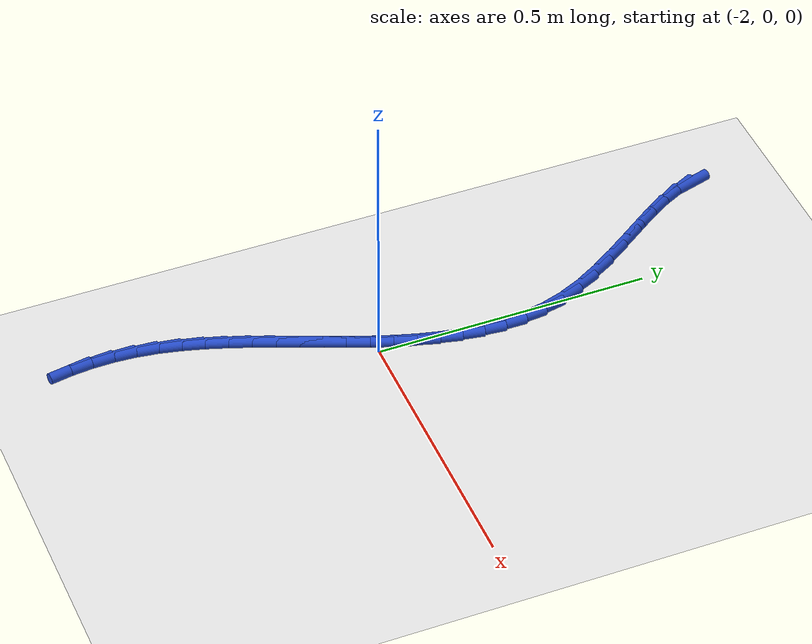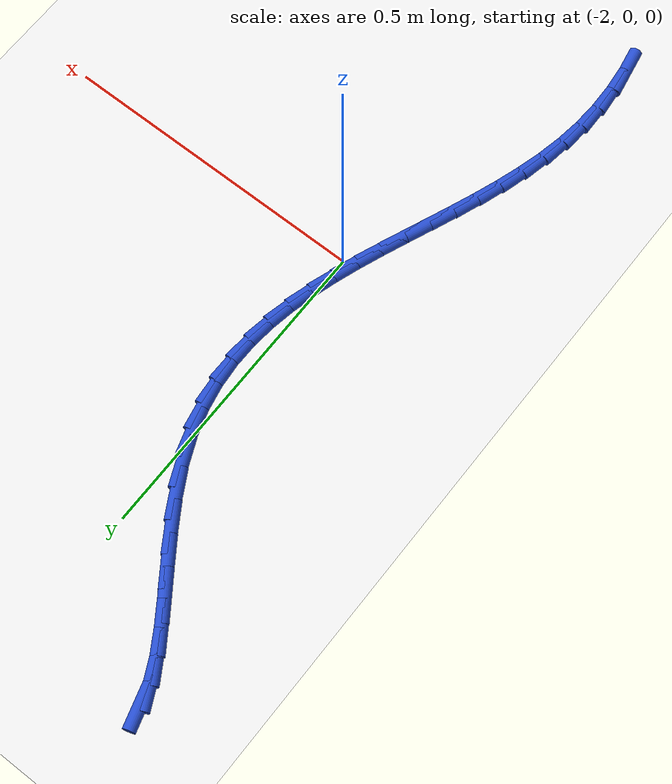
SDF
<sdf version="1.6">
 <world name="default">
  <model name="ground_plane">
   <static>1</static>
   <link name="link">
    <collision name="collision">
     <geometry><plane><normal>0 0 1</normal><size>100 100</size></plane></geometry>
     <surface><friction><ode><mu>100</mu><mu2>50</mu2></ode></friction></surface>
    </collision>
    <visual name="visual">
     <cast_shadows>0</cast_shadows>
     <geometry><plane><normal>0 0 1</normal><size>100 100</size></plane></geometry>
     <material>
      <script><uri>file://media/materials/scripts/gazebo.material</uri><name>Gazebo/WhiteGlow</name></script>
     </material>
    </visual>
   </link>
  </model>
  <model name="line">
   <link name="link_81">
    <pose>-2.189905080117014 0.6813268508372244 0.01 0 1.57 -1.2906413061240363</pose>
    <collision name="collision">
     <geometry><cylinder><radius>0.01</radius><length>0.08</length></cylinder></geometry>
    </collision>
    <visual name="visual">
     <material>
      <script><name>Gazebo/Blue</name><uri>file://media/materials/scripts/gazebo.material</uri></script>
     </material>
     <geometry><cylinder><radius>0.01</radius><length>0.08</length></cylinder></geometry>
    </visual>
   </link>
   <link name="link_82">
    <pose>-2.181699165474315 0.6528065787257264 0.01 0 1.57 -1.1169519439368545</pose>
    <collision name="collision">
     <geometry><cylinder><radius>0.01</radius><length>0.08</length></cylinder></geometry>
    </collision>
    <visual name="visual">
     <material>
      <script><name>Gazebo/Blue</name><uri>file://media/materials/scripts/gazebo.material</uri></script>
     </material>
     <geometry><cylinder><radius>0.01</radius><length>0.08</length></cylinder></geometry>
    </visual>
   </link>
   <link name="link_83">
    <pose>-2.1660738935886026 0.6207748023590199 0.01 0 1.57 -1.0246132254083469</pose>
    <collision name="collision">
     <geometry><cylinder><radius>0.01</radius><length>0.08</length></cylinder></geometry>
    </collision>
    <visual name="visual">
     <material>
      <script><name>Gazebo/Blue</name><uri>file://media/materials/scripts/gazebo.material</uri></script>
     </material>
     <geometry><cylinder><radius>0.01</radius><length>0.08</length></cylinder></geometry>
    </visual>
   </link>
   <link name="link_84">
    <pose>-2.144806069992094 0.5857871059061365 0.01 0 1.57 -0.9789481482282569</pose>
    <collision name="collision">
     <geometry><cylinder><radius>0.01</radius><length>0.08</length></cylinder></geometry>
    </collision>
    <visual name="visual">
     <material>
      <script><name>Gazebo/Blue</name><uri>file://media/materials/scripts/gazebo.material</uri></script>
     </material>
     <geometry><cylinder><radius>0.01</radius><length>0.08</length></cylinder></geometry>
    </visual>
   </link>
   <link name="link_85">
    <pose>-2.1196725002170105 0.548399073536109 0.01 0 1.57 -0.9641953086082474</pose>
    <collision name="collision">
     <geometry><cylinder><radius>0.01</radius><length>0.08</length></cylinder></geometry>
    </collision>
    <visual name="visual">
     <material>
      <script><name>Gazebo/Blue</name><uri>file://media/materials/scripts/gazebo.material</uri></script>
     </material>
     <geometry><cylinder><radius>0.01</radius><length>0.08</length></cylinder></geometry>
    </visual>
   </link>
   <link name="link_86">
    <pose>-2.0924499897955706 0.5091662894179695 0.01 0 1.57 -0.9739620004251649</pose>
    <collision name="collision">
     <geometry><cylinder><radius>0.01</radius><length>0.08</length></cylinder></geometry>
    </collision>
    <visual name="visual">
     <material>
      <script><name>Gazebo/Blue</name><uri>file://media/materials/scripts/gazebo.material</uri></script>
     </material>
     <geometry><cylinder><radius>0.01</radius><length>0.08</length></cylinder></geometry>
    </visual>
   </link>
   <link name="link_87">
    <pose>-2.0649153442599952 0.4686443377207501 0.01 0 1.57 -1.0072401572412888</pose>
    <collision name="collision">
     <geometry><cylinder><radius>0.01</radius><length>0.08</length></cylinder></geometry>
    </collision>
    <visual name="visual">
     <material>
      <script><name>Gazebo/Blue</name><uri>file://media/materials/scripts/gazebo.material</uri></script>
     </material>
     <geometry><cylinder><radius>0.01</radius><length>0.08</length></cylinder></geometry>
    </visual>
   </link>
   <link name="link_88">
    <pose>-2.038845369142503 0.42738880261348305 0.01 0 1.57 -1.0672112033791916</pose>
    <collision name="collision">
     <geometry><cylinder><radius>0.01</radius><length>0.08</length></cylinder></geometry>
    </collision>
    <visual name="visual">
     <material>
      <script><name>Gazebo/Blue</name><uri>file://media/materials/scripts/gazebo.material</uri></script>
     </material>
     <geometry><cylinder><radius>0.01</radius><length>0.08</length></cylinder></geometry>
    </visual>
   </link>
   <link name="link_89">
    <pose>-2.016016869975314 0.3859552682652008 0.01 0 1.57 -1.1593003638283783</pose>
    <collision name="collision">
     <geometry><cylinder><radius>0.01</radius><length>0.08</length></cylinder></geometry>
    </collision>
    <visual name="visual">
     <material>
      <script><name>Gazebo/Blue</name><uri>file://media/materials/scripts/gazebo.material</uri></script>
     </material>
     <geometry><cylinder><radius>0.01</radius><length>0.08</length></cylinder></geometry>
    </visual>
   </link>
   <link name="link_90">
    <pose>-1.9980852372038564 0.3448663954729193 0.01 0 1.57 -1.2678908830572797</pose>
    <collision name="collision">
     <geometry><cylinder><radius>0.01</radius><length>0.08</length></cylinder></geometry>
    </collision>
    <visual name="visual">
     <material>
      <script><name>Gazebo/Blue</name><uri>file://media/materials/scripts/gazebo.material</uri></script>
     </material>
     <geometry><cylinder><radius>0.01</radius><length>0.08</length></cylinder></geometry>
    </visual>
   </link>
   <link name="link_91">
    <pose>-1.9854048394609587 0.3042920550610868 0.01 0 1.57 -1.3771505133889712</pose>
    <collision name="collision">
     <geometry><cylinder><radius>0.01</radius><length>0.08</length></cylinder></geometry>
    </collision>
    <visual name="visual">
     <material>
      <script><name>Gazebo/Blue</name><uri>file://media/materials/scripts/gazebo.material</uri></script>
     </material>
     <geometry><cylinder><radius>0.01</radius><length>0.08</length></cylinder></geometry>
    </visual>
   </link>
   <link name="link_92">
    <pose>-1.9775403008985422 0.2641879677676178 0.01 0 1.57 -1.4829419453945156</pose>
    <collision name="collision">
     <geometry><cylinder><radius>0.01</radius><length>0.08</length></cylinder></geometry>
    </collision>
    <visual name="visual">
     <material>
      <script><name>Gazebo/Blue</name><uri>file://media/materials/scripts/gazebo.material</uri></script>
     </material>
     <geometry><cylinder><radius>0.01</radius><length>0.08</length></cylinder></geometry>
    </visual>
   </link>
   <link name="link_93">
    <pose>-1.9740451433343713 0.2245068437797001 0.01 0 1.57 1.5599141625766129</pose>
    <collision name="collision">
     <geometry><cylinder><radius>0.01</radius><length>0.08</length></cylinder></geometry>
    </collision>
    <visual name="visual">
     <material>
      <script><name>Gazebo/Blue</name><uri>file://media/materials/scripts/gazebo.material</uri></script>
     </material>
     <geometry><cylinder><radius>0.01</radius><length>0.08</length></cylinder></geometry>
    </visual>
   </link>
   <link name="link_94">
    <pose>-1.9744728885862113 0.18520139328452045 0.01 0 1.57 1.4709634981002337</pose>
    <collision name="collision">
     <geometry><cylinder><radius>0.01</radius><length>0.08</length></cylinder></geometry>
    </collision>
    <visual name="visual">
     <material>
      <script><name>Gazebo/Blue</name><uri>file://media/materials/scripts/gazebo.material</uri></script>
     </material>
     <geometry><cylinder><radius>0.01</radius><length>0.08</length></cylinder></geometry>
    </visual>
   </link>
   <link name="link_95">
    <pose>-1.978377058471827 0.146224326469267 0.01 0 1.57 1.3934834481057832</pose>
    <collision name="collision">
     <geometry><cylinder><radius>0.01</radius><length>0.08</length></cylinder></geometry>
    </collision>
    <visual name="visual">
     <material>
      <script><name>Gazebo/Blue</name><uri>file://media/materials/scripts/gazebo.material</uri></script>
     </material>
     <geometry><cylinder><radius>0.01</radius><length>0.08</length></cylinder></geometry>
    </visual>
   </link>
   <link name="link_96">
    <pose>-1.9853111748089831 0.10752835352112719 0.01 0 1.57 1.3282161376014</pose>
    <collision name="collision">
     <geometry><cylinder><radius>0.01</radius><length>0.08</length></cylinder></geometry>
    </collision>
    <visual name="visual">
     <material>
      <script><name>Gazebo/Blue</name><uri>file://media/materials/scripts/gazebo.material</uri></script>
     </material>
     <geometry><cylinder><radius>0.01</radius><length>0.08</length></cylinder></geometry>
    </visual>
   </link>
   <link name="link_97">
    <pose>-1.9948287594154437 0.06906618462728874 0.01 0 1.57 1.2752248809598141</pose>
    <collision name="collision">
     <geometry><cylinder><radius>0.01</radius><length>0.08</length></cylinder></geometry>
    </collision>
    <visual name="visual">
     <material>
      <script><name>Gazebo/Blue</name><uri>file://media/materials/scripts/gazebo.material</uri></script>
     </material>
     <geometry><cylinder><radius>0.01</radius><length>0.08</length></cylinder></geometry>
    </visual>
   </link>
   <link name="link_98">
    <pose>-2.006483334108974 0.03079052997494 0.01 0 1.57 1.2341837394453505</pose>
    <collision name="collision">
     <geometry><cylinder><radius>0.01</radius><length>0.08</length></cylinder></geometry>
    </collision>
    <visual name="visual">
     <material>
      <script><name>Gazebo/Blue</name><uri>file://media/materials/scripts/gazebo.material</uri></script>
     </material>
     <geometry><cylinder><radius>0.01</radius><length>0.08</length></cylinder></geometry>
    </visual>
   </link>
   <link name="link_99">
    <pose>-2.0198284207073387 -0.00734590024873312 0.01 0 1.57 1.2046161313720565</pose>
    <collision name="collision">
     <geometry><cylinder><radius>0.01</radius><length>0.08</length></cylinder></geometry>
    </collision>
    <visual name="visual">
     <material>
      <script><name>Gazebo/Blue</name><uri>file://media/materials/scripts/gazebo.material</uri></script>
     </material>
     <geometry><cylinder><radius>0.01</radius><length>0.08</length></cylinder></geometry>
    </visual>
   </link>
   <link name="link_100">
    <pose>-2.034417541028303 -0.04539039585654214 0.01 0 1.57 1.186060837435711</pose>
    <collision name="collision">
     <geometry><cylinder><radius>0.01</radius><length>0.08</length></cylinder></geometry>
    </collision>
    <visual name="visual">
     <material>
      <script><name>Gazebo/Blue</name><uri>file://media/materials/scripts/gazebo.material</uri></script>
     </material>
     <geometry><cylinder><radius>0.01</radius><length>0.08</length></cylinder></geometry>
    </visual>
   </link>
   <link name="link_101">
    <pose>-2.0498042168896315 -0.0833902466612995 0.01 0 1.57 1.178173522113141</pose>
    <collision name="collision">
     <geometry><cylinder><radius>0.01</radius><length>0.08</length></cylinder></geometry>
    </collision>
    <visual name="visual">
     <material>
      <script><name>Gazebo/Blue</name><uri>file://media/materials/scripts/gazebo.material</uri></script>
     </material>
     <geometry><cylinder><radius>0.01</radius><length>0.08</length></cylinder></geometry>
    </visual>
   </link>
   <link name="link_102">
    <pose>-2.0655419701090887 -0.1213927424758176 0.01 0 1.57 1.1807802811196089</pose>
    <collision name="collision">
     <geometry><cylinder><radius>0.01</radius><length>0.08</length></cylinder></geometry>
    </collision>
    <visual name="visual">
     <material>
      <script><name>Gazebo/Blue</name><uri>file://media/materials/scripts/gazebo.material</uri></script>
     </material>
     <geometry><cylinder><radius>0.01</radius><length>0.08</length></cylinder></geometry>
    </visual>
   </link>
   <link name="link_103">
    <pose>-2.081184322504439 -0.1594451731129089 0.01 0 1.57 1.1938968424001668</pose>
    <collision name="collision">
     <geometry><cylinder><radius>0.01</radius><length>0.08</length></cylinder></geometry>
    </collision>
    <visual name="visual">
     <material>
      <script><name>Gazebo/Blue</name><uri>file://media/materials/scripts/gazebo.material</uri></script>
     </material>
     <geometry><cylinder><radius>0.01</radius><length>0.08</length></cylinder></geometry>
    </visual>
   </link>
   <link name="link_104">
    <pose>-2.0962847958934483 -0.19759482838538578 0.01 0 1.57 1.217719997541913</pose>
    <collision name="collision">
     <geometry><cylinder><radius>0.01</radius><length>0.08</length></cylinder></geometry>
    </collision>
    <visual name="visual">
     <material>
      <script><name>Gazebo/Blue</name><uri>file://media/materials/scripts/gazebo.material</uri></script>
     </material>
     <geometry><cylinder><radius>0.01</radius><length>0.08</length></cylinder></geometry>
    </visual>
   </link>
   <link name="link_105">
    <pose>-2.1103969120938797 -0.2358889981060598 0.01 0 1.57 1.2525899162521816</pose>
    <collision name="collision">
     <geometry><cylinder><radius>0.01</radius><length>0.08</length></cylinder></geometry>
    </collision>
    <visual name="visual">
     <material>
      <script><name>Gazebo/Blue</name><uri>file://media/materials/scripts/gazebo.material</uri></script>
     </material>
     <geometry><cylinder><radius>0.01</radius><length>0.08</length></cylinder></geometry>
    </visual>
   </link>
   <link name="link_106">
    <pose>-2.1230741929234984 -0.274374972087745 0.01 0 1.57 1.2989146675885617</pose>
    <collision name="collision">
     <geometry><cylinder><radius>0.01</radius><length>0.08</length></cylinder></geometry>
    </collision>
    <visual name="visual">
     <material>
      <script><name>Gazebo/Blue</name><uri>file://media/materials/scripts/gazebo.material</uri></script>
     </material>
     <geometry><cylinder><radius>0.01</radius><length>0.08</length></cylinder></geometry>
    </visual>
   </link>
   <link name="link_107">
    <pose>-2.133870160200071 -0.31310004014325304 0.01 0 1.57 1.3570434560629696</pose>
    <collision name="collision">
     <geometry><cylinder><radius>0.01</radius><length>0.08</length></cylinder></geometry>
    </collision>
    <visual name="visual">
     <material>
      <script><name>Gazebo/Blue</name><uri>file://media/materials/scripts/gazebo.material</uri></script>
     </material>
     <geometry><cylinder><radius>0.01</radius><length>0.08</length></cylinder></geometry>
    </visual>
   </link>
   <link name="link_108">
    <pose>-2.1423383357413597 -0.35211149208539627 0.01 0 1.57 1.4270771614529825</pose>
    <collision name="collision">
     <geometry><cylinder><radius>0.01</radius><length>0.08</length></cylinder></geometry>
    </collision>
    <visual name="visual">
     <material>
      <script><name>Gazebo/Blue</name><uri>file://media/materials/scripts/gazebo.material</uri></script>
     </material>
     <geometry><cylinder><radius>0.01</radius><length>0.08</length></cylinder></geometry>
    </visual>
   </link>
   <link name="link_109">
    <pose>-2.148032241365131 -0.39145661772698714 0.01 0 1.57 1.5072677265315575</pose>
    <collision name="collision">
     <geometry><cylinder><radius>0.01</radius><length>0.08</length></cylinder></geometry>
    </collision>
    <visual name="visual">
     <material>
      <script><name>Gazebo/Blue</name><uri>file://media/materials/scripts/gazebo.material</uri></script>
     </material>
     <geometry><cylinder><radius>0.01</radius><length>0.08</length></cylinder></geometry>
    </visual>
   </link>
   <link name="link_110">
    <pose>-2.1505574306741746 -0.4311519873920081 0.01 0 1.57 -1.5531566329614876</pose>
    <collision name="collision">
     <geometry><cylinder><radius>0.01</radius><length>0.08</length></cylinder></geometry>
    </collision>
    <visual name="visual">
     <material>
      <script><name>Gazebo/Blue</name><uri>file://media/materials/scripts/gazebo.material</uri></script>
     </material>
     <geometry><cylinder><radius>0.01</radius><length>0.08</length></cylinder></geometry>
    </visual>
   </link>
   <link name="link_111">
    <pose>-2.149854158801362 -0.471016564116712 0.01 0 1.57 -1.4740779643941306</pose>
    <collision name="collision">
     <geometry><cylinder><radius>0.01</radius><length>0.08</length></cylinder></geometry>
    </collision>
    <visual name="visual">
     <material>
      <script><name>Gazebo/Blue</name><uri>file://media/materials/scripts/gazebo.material</uri></script>
     </material>
     <geometry><cylinder><radius>0.01</radius><length>0.08</length></cylinder></geometry>
    </visual>
   </link>
   <link name="link_112">
    <pose>-2.145995192802852 -0.5107910760940662 0.01 0 1.57 -1.3965124742651513</pose>
    <collision name="collision">
     <geometry><cylinder><radius>0.01</radius><length>0.08</length></cylinder></geometry>
    </collision>
    <visual name="visual">
     <material>
      <script><name>Gazebo/Blue</name><uri>file://media/materials/scripts/gazebo.material</uri></script>
     </material>
     <geometry><cylinder><radius>0.01</radius><length>0.08</length></cylinder></geometry>
    </visual>
   </link>
  </model>
 </world>
</sdf>
